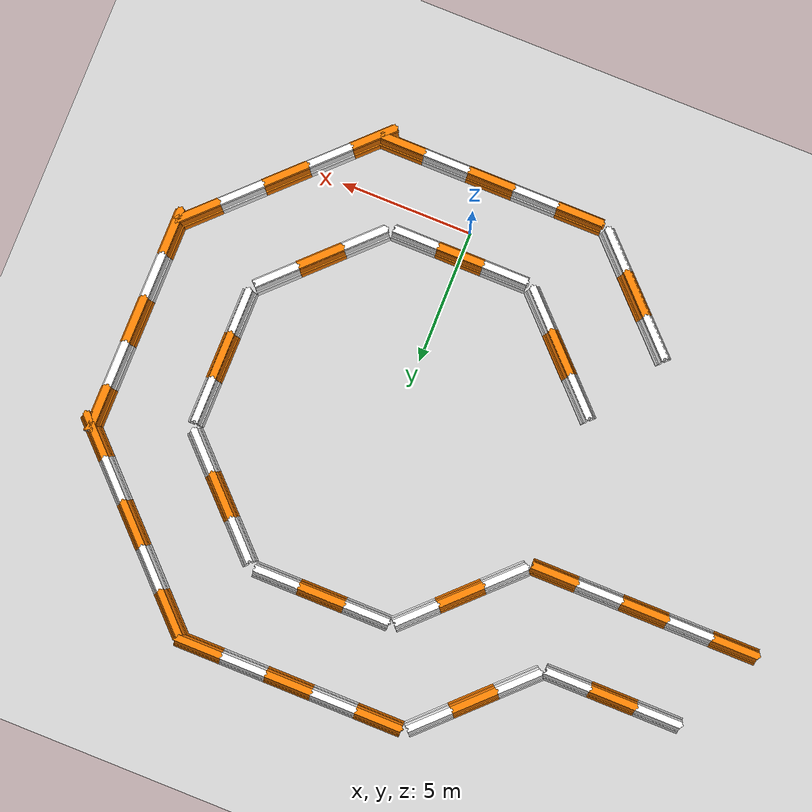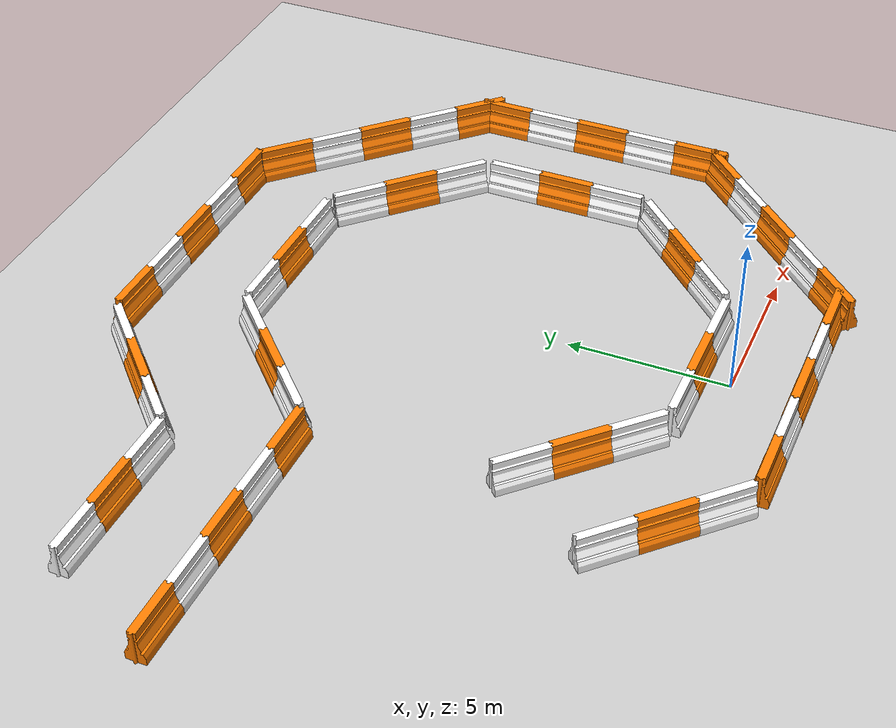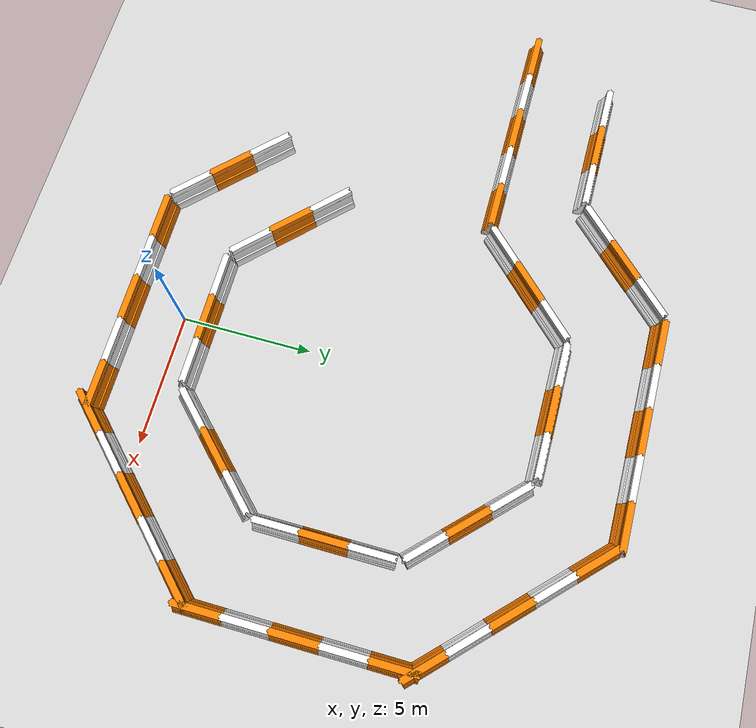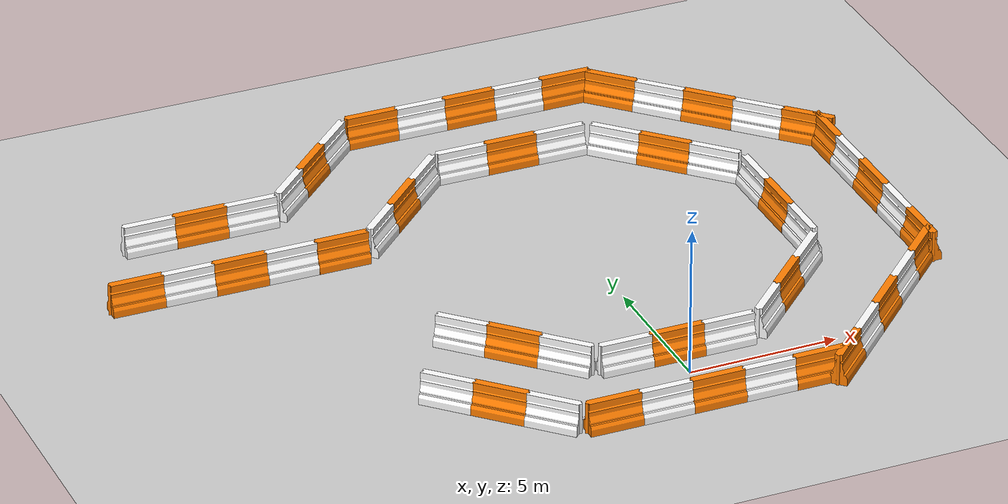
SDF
<sdf version="1.7">
 <world name="default">
  <model name="ground_plane">
   <static>1</static>
   <link name="link">
    <collision name="collision">
     <geometry><plane><normal>0 0 1</normal><size>100 100</size></plane></geometry>
     <surface>
      <contact><collide_bitmask>65535</collide_bitmask></contact>
      <friction><ode><mu>100</mu><mu2>50</mu2></ode></friction>
     </surface>
    </collision>
    <visual name="visual">
     <cast_shadows>0</cast_shadows>
     <geometry><plane><normal>0 0 1</normal><size>100 100</size></plane></geometry>
     <material>
      <script><uri>file://media/materials/scripts/gazebo.material</uri><name>Gazebo/Grey</name></script>
     </material>
    </visual>
   </link>
  </model>
  <model name="barrier_3">
   <model name="drc_practice_organge_jersey_barrier">
    <static>1</static>
    <link name="link">
     <visual name="visual">
      <geometry>
       <mesh><uri>model://drc_practice_orange_jersey_barrier/meshes/jersey_barrier.dae</uri></mesh>
      </geometry>
     </visual>
     <collision name="collision">
      <geometry>
       <mesh><uri>model://drc_practice_orange_jersey_barrier/meshes/jersey_barrier.dae</uri></mesh>
      </geometry>
     </collision>
    </link>
    <pose>-0 -1e-06 0 0 -0 0</pose>
   </model>
   <model name="drc_practice_white_jersey_barrier">
    <static>1</static>
    <link name="link">
     <visual name="visual">
      <geometry>
       <mesh><uri>model://drc_practice_white_jersey_barrier/meshes/jersey_barrier.dae</uri></mesh>
      </geometry>
     </visual>
     <collision name="collision">
      <geometry>
       <mesh><uri>model://drc_practice_white_jersey_barrier/meshes/jersey_barrier.dae</uri></mesh>
      </geometry>
     </collision>
    </link>
    <pose>0.00455 1.74067 0 0 -0 0</pose>
   </model>
   <model name="drc_practice_white_jersey_barrier_0">
    <static>1</static>
    <link name="link">
     <visual name="visual">
      <geometry>
       <mesh><uri>model://drc_practice_white_jersey_barrier/meshes/jersey_barrier.dae</uri></mesh>
      </geometry>
     </visual>
     <collision name="collision">
      <geometry>
       <mesh><uri>model://drc_practice_white_jersey_barrier/meshes/jersey_barrier.dae</uri></mesh>
      </geometry>
     </collision>
    </link>
    <pose>-0.007009 -1.73276 0 0 -0 0</pose>
   </model>
   <static>0</static>
   <pose>-0 1 0 0 0 -1.5708</pose>
  </model>
  <model name="barrier_5">
   <model name="drc_practice_organge_jersey_barrier">
    <static>1</static>
    <link name="link">
     <visual name="visual">
      <geometry>
       <mesh><uri>model://drc_practice_orange_jersey_barrier/meshes/jersey_barrier.dae</uri></mesh>
      </geometry>
     </visual>
     <collision name="collision">
      <geometry>
       <mesh><uri>model://drc_practice_orange_jersey_barrier/meshes/jersey_barrier.dae</uri></mesh>
      </geometry>
     </collision>
    </link>
    <pose>0.00082 -0.002637 0 0 -0 0</pose>
   </model>
   <model name="drc_practice_organge_jersey_barrier_0">
    <static>1</static>
    <link name="link">
     <visual name="visual">
      <geometry>
       <mesh><uri>model://drc_practice_orange_jersey_barrier/meshes/jersey_barrier.dae</uri></mesh>
      </geometry>
     </visual>
     <collision name="collision">
      <geometry>
       <mesh><uri>model://drc_practice_orange_jersey_barrier/meshes/jersey_barrier.dae</uri></mesh>
      </geometry>
     </collision>
    </link>
    <pose>0.013598 3.47709 0 0 -0 0</pose>
   </model>
   <model name="drc_practice_organge_jersey_barrier_1">
    <static>1</static>
    <link name="link">
     <visual name="visual">
      <geometry>
       <mesh><uri>model://drc_practice_orange_jersey_barrier/meshes/jersey_barrier.dae</uri></mesh>
      </geometry>
     </visual>
     <collision name="collision">
      <geometry>
       <mesh><uri>model://drc_practice_orange_jersey_barrier/meshes/jersey_barrier.dae</uri></mesh>
      </geometry>
     </collision>
    </link>
    <pose>-0.015441 -3.47408 0 0 -0 0</pose>
   </model>
   <model name="drc_practice_white_jersey_barrier">
    <static>1</static>
    <link name="link">
     <visual name="visual">
      <geometry>
       <mesh><uri>model://drc_practice_white_jersey_barrier/meshes/jersey_barrier.dae</uri></mesh>
      </geometry>
     </visual>
     <collision name="collision">
      <geometry>
       <mesh><uri>model://drc_practice_white_jersey_barrier/meshes/jersey_barrier.dae</uri></mesh>
      </geometry>
     </collision>
    </link>
    <pose>0.00537 1.73804 0 0 -0 0</pose>
   </model>
   <model name="drc_practice_white_jersey_barrier_0">
    <static>1</static>
    <link name="link">
     <visual name="visual">
      <geometry>
       <mesh><uri>model://drc_practice_white_jersey_barrier/meshes/jersey_barrier.dae</uri></mesh>
      </geometry>
     </visual>
     <collision name="collision">
      <geometry>
       <mesh><uri>model://drc_practice_white_jersey_barrier/meshes/jersey_barrier.dae</uri></mesh>
      </geometry>
     </collision>
    </link>
    <pose>-0.006189 -1.7354 0 0 -0 0</pose>
   </model>
   <static>0</static>
   <pose>0 -2 0 0 0 -1.5708</pose>
  </model>
  <model name="barrier_3_clone">
   <model name="drc_practice_organge_jersey_barrier">
    <static>1</static>
    <link name="link">
     <visual name="visual">
      <geometry>
       <mesh><uri>model://drc_practice_orange_jersey_barrier/meshes/jersey_barrier.dae</uri></mesh>
      </geometry>
     </visual>
     <collision name="collision">
      <geometry>
       <mesh><uri>model://drc_practice_orange_jersey_barrier/meshes/jersey_barrier.dae</uri></mesh>
      </geometry>
     </collision>
    </link>
    <pose>-0 -1e-06 0 0 -0 0</pose>
   </model>
   <model name="drc_practice_white_jersey_barrier">
    <static>1</static>
    <link name="link">
     <visual name="visual">
      <geometry>
       <mesh><uri>model://drc_practice_white_jersey_barrier/meshes/jersey_barrier.dae</uri></mesh>
      </geometry>
     </visual>
     <collision name="collision">
      <geometry>
       <mesh><uri>model://drc_practice_white_jersey_barrier/meshes/jersey_barrier.dae</uri></mesh>
      </geometry>
     </collision>
    </link>
    <pose>0.00455 1.74067 0 0 -0 0</pose>
   </model>
   <model name="drc_practice_white_jersey_barrier_0">
    <static>1</static>
    <link name="link">
     <visual name="visual">
      <geometry>
       <mesh><uri>model://drc_practice_white_jersey_barrier/meshes/jersey_barrier.dae</uri></mesh>
      </geometry>
     </visual>
     <collision name="collision">
      <geometry>
       <mesh><uri>model://drc_practice_white_jersey_barrier/meshes/jersey_barrier.dae</uri></mesh>
      </geometry>
     </collision>
    </link>
    <pose>-0.007009 -1.73276 0 0 -0 0</pose>
   </model>
   <static>0</static>
   <pose>4.67024 2.91222 0 0 0 -0.785402</pose>
  </model>
  <model name="barrier_3_clone_clone">
   <model name="drc_practice_organge_jersey_barrier">
    <static>1</static>
    <link name="link">
     <visual name="visual">
      <geometry>
       <mesh><uri>model://drc_practice_orange_jersey_barrier/meshes/jersey_barrier.dae</uri></mesh>
      </geometry>
     </visual>
     <collision name="collision">
      <geometry>
       <mesh><uri>model://drc_practice_orange_jersey_barrier/meshes/jersey_barrier.dae</uri></mesh>
      </geometry>
     </collision>
    </link>
    <pose>-0 -1e-06 0 0 -0 0</pose>
   </model>
   <model name="drc_practice_white_jersey_barrier">
    <static>1</static>
    <link name="link">
     <visual name="visual">
      <geometry>
       <mesh><uri>model://drc_practice_white_jersey_barrier/meshes/jersey_barrier.dae</uri></mesh>
      </geometry>
     </visual>
     <collision name="collision">
      <geometry>
       <mesh><uri>model://drc_practice_white_jersey_barrier/meshes/jersey_barrier.dae</uri></mesh>
      </geometry>
     </collision>
    </link>
    <pose>0.00455 1.74067 0 0 -0 0</pose>
   </model>
   <model name="drc_practice_white_jersey_barrier_0">
    <static>1</static>
    <link name="link">
     <visual name="visual">
      <geometry>
       <mesh><uri>model://drc_practice_white_jersey_barrier/meshes/jersey_barrier.dae</uri></mesh>
      </geometry>
     </visual>
     <collision name="collision">
      <geometry>
       <mesh><uri>model://drc_practice_white_jersey_barrier/meshes/jersey_barrier.dae</uri></mesh>
      </geometry>
     </collision>
    </link>
    <pose>-0.007009 -1.73276 0 0 -0 0</pose>
   </model>
   <static>0</static>
   <pose>6.62088 7.56063 0 0 0 -4e-06</pose>
  </model>
  <model name="barrier_3_clone_clone_clone">
   <model name="drc_practice_organge_jersey_barrier">
    <static>1</static>
    <link name="link">
     <visual name="visual">
      <geometry>
       <mesh><uri>model://drc_practice_orange_jersey_barrier/meshes/jersey_barrier.dae</uri></mesh>
      </geometry>
     </visual>
     <collision name="collision">
      <geometry>
       <mesh><uri>model://drc_practice_orange_jersey_barrier/meshes/jersey_barrier.dae</uri></mesh>
      </geometry>
     </collision>
    </link>
    <pose>-0 -1e-06 0 0 -0 0</pose>
   </model>
   <model name="drc_practice_white_jersey_barrier">
    <static>1</static>
    <link name="link">
     <visual name="visual">
      <geometry>
       <mesh><uri>model://drc_practice_white_jersey_barrier/meshes/jersey_barrier.dae</uri></mesh>
      </geometry>
     </visual>
     <collision name="collision">
      <geometry>
       <mesh><uri>model://drc_practice_white_jersey_barrier/meshes/jersey_barrier.dae</uri></mesh>
      </geometry>
     </collision>
    </link>
    <pose>0.00455 1.74067 0 0 -0 0</pose>
   </model>
   <model name="drc_practice_white_jersey_barrier_0">
    <static>1</static>
    <link name="link">
     <visual name="visual">
      <geometry>
       <mesh><uri>model://drc_practice_white_jersey_barrier/meshes/jersey_barrier.dae</uri></mesh>
      </geometry>
     </visual>
     <collision name="collision">
      <geometry>
       <mesh><uri>model://drc_practice_white_jersey_barrier/meshes/jersey_barrier.dae</uri></mesh>
      </geometry>
     </collision>
    </link>
    <pose>-0.007009 -1.73276 0 0 -0 0</pose>
   </model>
   <static>0</static>
   <pose>4.73342 12.2462 0 0 -0 0.785394</pose>
  </model>
  <model name="barrier_3_clone_clone_clone_clone">
   <model name="drc_practice_organge_jersey_barrier">
    <static>1</static>
    <link name="link">
     <visual name="visual">
      <geometry>
       <mesh><uri>model://drc_practice_orange_jersey_barrier/meshes/jersey_barrier.dae</uri></mesh>
      </geometry>
     </visual>
     <collision name="collision">
      <geometry>
       <mesh><uri>model://drc_practice_orange_jersey_barrier/meshes/jersey_barrier.dae</uri></mesh>
      </geometry>
     </collision>
    </link>
    <pose>-0 -1e-06 0 0 -0 0</pose>
   </model>
   <model name="drc_practice_white_jersey_barrier">
    <static>1</static>
    <link name="link">
     <visual name="visual">
      <geometry>
       <mesh><uri>model://drc_practice_white_jersey_barrier/meshes/jersey_barrier.dae</uri></mesh>
      </geometry>
     </visual>
     <collision name="collision">
      <geometry>
       <mesh><uri>model://drc_practice_white_jersey_barrier/meshes/jersey_barrier.dae</uri></mesh>
      </geometry>
     </collision>
    </link>
    <pose>0.00455 1.74067 0 0 -0 0</pose>
   </model>
   <model name="drc_practice_white_jersey_barrier_0">
    <static>1</static>
    <link name="link">
     <visual name="visual">
      <geometry>
       <mesh><uri>model://drc_practice_white_jersey_barrier/meshes/jersey_barrier.dae</uri></mesh>
      </geometry>
     </visual>
     <collision name="collision">
      <geometry>
       <mesh><uri>model://drc_practice_white_jersey_barrier/meshes/jersey_barrier.dae</uri></mesh>
      </geometry>
     </collision>
    </link>
    <pose>-0.007009 -1.73276 0 0 -0 0</pose>
   </model>
   <static>0</static>
   <pose>-4.65773 2.94132 0 0 -0 0.785394</pose>
  </model>
  <model name="barrier_5_clone">
   <model name="drc_practice_organge_jersey_barrier">
    <static>1</static>
    <link name="link">
     <visual name="visual">
      <geometry>
       <mesh><uri>model://drc_practice_orange_jersey_barrier/meshes/jersey_barrier.dae</uri></mesh>
      </geometry>
     </visual>
     <collision name="collision">
      <geometry>
       <mesh><uri>model://drc_practice_orange_jersey_barrier/meshes/jersey_barrier.dae</uri></mesh>
      </geometry>
     </collision>
    </link>
    <pose>0.00082 -0.002637 0 0 -0 0</pose>
   </model>
   <model name="drc_practice_organge_jersey_barrier_0">
    <static>1</static>
    <link name="link">
     <visual name="visual">
      <geometry>
       <mesh><uri>model://drc_practice_orange_jersey_barrier/meshes/jersey_barrier.dae</uri></mesh>
      </geometry>
     </visual>
     <collision name="collision">
      <geometry>
       <mesh><uri>model://drc_practice_orange_jersey_barrier/meshes/jersey_barrier.dae</uri></mesh>
      </geometry>
     </collision>
    </link>
    <pose>0.013598 3.47709 0 0 -0 0</pose>
   </model>
   <model name="drc_practice_organge_jersey_barrier_1">
    <static>1</static>
    <link name="link">
     <visual name="visual">
      <geometry>
       <mesh><uri>model://drc_practice_orange_jersey_barrier/meshes/jersey_barrier.dae</uri></mesh>
      </geometry>
     </visual>
     <collision name="collision">
      <geometry>
       <mesh><uri>model://drc_practice_orange_jersey_barrier/meshes/jersey_barrier.dae</uri></mesh>
      </geometry>
     </collision>
    </link>
    <pose>-0.015441 -3.47408 0 0 -0 0</pose>
   </model>
   <model name="drc_practice_white_jersey_barrier">
    <static>1</static>
    <link name="link">
     <visual name="visual">
      <geometry>
       <mesh><uri>model://drc_practice_white_jersey_barrier/meshes/jersey_barrier.dae</uri></mesh>
      </geometry>
     </visual>
     <collision name="collision">
      <geometry>
       <mesh><uri>model://drc_practice_white_jersey_barrier/meshes/jersey_barrier.dae</uri></mesh>
      </geometry>
     </collision>
    </link>
    <pose>0.00537 1.73804 0 0 -0 0</pose>
   </model>
   <model name="drc_practice_white_jersey_barrier_0">
    <static>1</static>
    <link name="link">
     <visual name="visual">
      <geometry>
       <mesh><uri>model://drc_practice_white_jersey_barrier/meshes/jersey_barrier.dae</uri></mesh>
      </geometry>
     </visual>
     <collision name="collision">
      <geometry>
       <mesh><uri>model://drc_practice_white_jersey_barrier/meshes/jersey_barrier.dae</uri></mesh>
      </geometry>
     </collision>
    </link>
    <pose>-0.006189 -1.7354 0 0 -0 0</pose>
   </model>
   <static>0</static>
   <pose>6.97032 0.59409 0 0 0 -0.785402</pose>
  </model>
  <model name="barrier_5_clone_clone">
   <model name="drc_practice_organge_jersey_barrier">
    <static>1</static>
    <link name="link">
     <visual name="visual">
      <geometry>
       <mesh><uri>model://drc_practice_orange_jersey_barrier/meshes/jersey_barrier.dae</uri></mesh>
      </geometry>
     </visual>
     <collision name="collision">
      <geometry>
       <mesh><uri>model://drc_practice_orange_jersey_barrier/meshes/jersey_barrier.dae</uri></mesh>
      </geometry>
     </collision>
    </link>
    <pose>0.00082 -0.002637 0 0 -0 0</pose>
   </model>
   <model name="drc_practice_organge_jersey_barrier_0">
    <static>1</static>
    <link name="link">
     <visual name="visual">
      <geometry>
       <mesh><uri>model://drc_practice_orange_jersey_barrier/meshes/jersey_barrier.dae</uri></mesh>
      </geometry>
     </visual>
     <collision name="collision">
      <geometry>
       <mesh><uri>model://drc_practice_orange_jersey_barrier/meshes/jersey_barrier.dae</uri></mesh>
      </geometry>
     </collision>
    </link>
    <pose>0.013598 3.47709 0 0 -0 0</pose>
   </model>
   <model name="drc_practice_organge_jersey_barrier_1">
    <static>1</static>
    <link name="link">
     <visual name="visual">
      <geometry>
       <mesh><uri>model://drc_practice_orange_jersey_barrier/meshes/jersey_barrier.dae</uri></mesh>
      </geometry>
     </visual>
     <collision name="collision">
      <geometry>
       <mesh><uri>model://drc_practice_orange_jersey_barrier/meshes/jersey_barrier.dae</uri></mesh>
      </geometry>
     </collision>
    </link>
    <pose>-0.015441 -3.47408 0 0 -0 0</pose>
   </model>
   <model name="drc_practice_white_jersey_barrier">
    <static>1</static>
    <link name="link">
     <visual name="visual">
      <geometry>
       <mesh><uri>model://drc_practice_white_jersey_barrier/meshes/jersey_barrier.dae</uri></mesh>
      </geometry>
     </visual>
     <collision name="collision">
      <geometry>
       <mesh><uri>model://drc_practice_white_jersey_barrier/meshes/jersey_barrier.dae</uri></mesh>
      </geometry>
     </collision>
    </link>
    <pose>0.00537 1.73804 0 0 -0 0</pose>
   </model>
   <model name="drc_practice_white_jersey_barrier_0">
    <static>1</static>
    <link name="link">
     <visual name="visual">
      <geometry>
       <mesh><uri>model://drc_practice_white_jersey_barrier/meshes/jersey_barrier.dae</uri></mesh>
      </geometry>
     </visual>
     <collision name="collision">
      <geometry>
       <mesh><uri>model://drc_practice_white_jersey_barrier/meshes/jersey_barrier.dae</uri></mesh>
      </geometry>
     </collision>
    </link>
    <pose>-0.006189 -1.7354 0 0 -0 0</pose>
   </model>
   <static>0</static>
   <pose>9.99998 7.51198 0 0 0 -4e-06</pose>
  </model>
  <model name="barrier_5_clone_clone_clone">
   <model name="drc_practice_organge_jersey_barrier">
    <static>1</static>
    <link name="link">
     <visual name="visual">
      <geometry>
       <mesh><uri>model://drc_practice_orange_jersey_barrier/meshes/jersey_barrier.dae</uri></mesh>
      </geometry>
     </visual>
     <collision name="collision">
      <geometry>
       <mesh><uri>model://drc_practice_orange_jersey_barrier/meshes/jersey_barrier.dae</uri></mesh>
      </geometry>
     </collision>
    </link>
    <pose>0.00082 -0.002637 0 0 -0 0</pose>
   </model>
   <model name="drc_practice_organge_jersey_barrier_0">
    <static>1</static>
    <link name="link">
     <visual name="visual">
      <geometry>
       <mesh><uri>model://drc_practice_orange_jersey_barrier/meshes/jersey_barrier.dae</uri></mesh>
      </geometry>
     </visual>
     <collision name="collision">
      <geometry>
       <mesh><uri>model://drc_practice_orange_jersey_barrier/meshes/jersey_barrier.dae</uri></mesh>
      </geometry>
     </collision>
    </link>
    <pose>0.013598 3.47709 0 0 -0 0</pose>
   </model>
   <model name="drc_practice_organge_jersey_barrier_1">
    <static>1</static>
    <link name="link">
     <visual name="visual">
      <geometry>
       <mesh><uri>model://drc_practice_orange_jersey_barrier/meshes/jersey_barrier.dae</uri></mesh>
      </geometry>
     </visual>
     <collision name="collision">
      <geometry>
       <mesh><uri>model://drc_practice_orange_jersey_barrier/meshes/jersey_barrier.dae</uri></mesh>
      </geometry>
     </collision>
    </link>
    <pose>-0.015441 -3.47408 0 0 -0 0</pose>
   </model>
   <model name="drc_practice_white_jersey_barrier">
    <static>1</static>
    <link name="link">
     <visual name="visual">
      <geometry>
       <mesh><uri>model://drc_practice_white_jersey_barrier/meshes/jersey_barrier.dae</uri></mesh>
      </geometry>
     </visual>
     <collision name="collision">
      <geometry>
       <mesh><uri>model://drc_practice_white_jersey_barrier/meshes/jersey_barrier.dae</uri></mesh>
      </geometry>
     </collision>
    </link>
    <pose>0.00537 1.73804 0 0 -0 0</pose>
   </model>
   <model name="drc_practice_white_jersey_barrier_0">
    <static>1</static>
    <link name="link">
     <visual name="visual">
      <geometry>
       <mesh><uri>model://drc_practice_white_jersey_barrier/meshes/jersey_barrier.dae</uri></mesh>
      </geometry>
     </visual>
     <collision name="collision">
      <geometry>
       <mesh><uri>model://drc_practice_white_jersey_barrier/meshes/jersey_barrier.dae</uri></mesh>
      </geometry>
     </collision>
    </link>
    <pose>-0.006189 -1.7354 0 0 -0 0</pose>
   </model>
   <static>0</static>
   <pose>7.30364 14.3723 0 0 -0 0.785394</pose>
  </model>
  <model name="barrier_3_clone_clone_clone_clone_clone">
   <model name="drc_practice_organge_jersey_barrier">
    <static>1</static>
    <link name="link">
     <visual name="visual">
      <geometry>
       <mesh><uri>model://drc_practice_orange_jersey_barrier/meshes/jersey_barrier.dae</uri></mesh>
      </geometry>
     </visual>
     <collision name="collision">
      <geometry>
       <mesh><uri>model://drc_practice_orange_jersey_barrier/meshes/jersey_barrier.dae</uri></mesh>
      </geometry>
     </collision>
    </link>
    <pose>-0 -1e-06 0 0 -0 0</pose>
   </model>
   <model name="drc_practice_white_jersey_barrier">
    <static>1</static>
    <link name="link">
     <visual name="visual">
      <geometry>
       <mesh><uri>model://drc_practice_white_jersey_barrier/meshes/jersey_barrier.dae</uri></mesh>
      </geometry>
     </visual>
     <collision name="collision">
      <geometry>
       <mesh><uri>model://drc_practice_white_jersey_barrier/meshes/jersey_barrier.dae</uri></mesh>
      </geometry>
     </collision>
    </link>
    <pose>0.00455 1.74067 0 0 -0 0</pose>
   </model>
   <model name="drc_practice_white_jersey_barrier_0">
    <static>1</static>
    <link name="link">
     <visual name="visual">
      <geometry>
       <mesh><uri>model://drc_practice_white_jersey_barrier/meshes/jersey_barrier.dae</uri></mesh>
      </geometry>
     </visual>
     <collision name="collision">
      <geometry>
       <mesh><uri>model://drc_practice_white_jersey_barrier/meshes/jersey_barrier.dae</uri></mesh>
      </geometry>
     </collision>
    </link>
    <pose>-0.007009 -1.73276 0 0 -0 0</pose>
   </model>
   <static>0</static>
   <pose>-6.38882 -0.053751 0 0 -0 0.785394</pose>
  </model>
  <model name="barrier_3_clone_1">
   <model name="drc_practice_organge_jersey_barrier">
    <static>1</static>
    <link name="link">
     <visual name="visual">
      <geometry>
       <mesh><uri>model://drc_practice_orange_jersey_barrier/meshes/jersey_barrier.dae</uri></mesh>
      </geometry>
     </visual>
     <collision name="collision">
      <geometry>
       <mesh><uri>model://drc_practice_orange_jersey_barrier/meshes/jersey_barrier.dae</uri></mesh>
      </geometry>
     </collision>
    </link>
    <pose>-0 -1e-06 0 0 -0 0</pose>
   </model>
   <model name="drc_practice_white_jersey_barrier">
    <static>1</static>
    <link name="link">
     <visual name="visual">
      <geometry>
       <mesh><uri>model://drc_practice_white_jersey_barrier/meshes/jersey_barrier.dae</uri></mesh>
      </geometry>
     </visual>
     <collision name="collision">
      <geometry>
       <mesh><uri>model://drc_practice_white_jersey_barrier/meshes/jersey_barrier.dae</uri></mesh>
      </geometry>
     </collision>
    </link>
    <pose>0.00455 1.74067 0 0 -0 0</pose>
   </model>
   <model name="drc_practice_white_jersey_barrier_0">
    <static>1</static>
    <link name="link">
     <visual name="visual">
      <geometry>
       <mesh><uri>model://drc_practice_white_jersey_barrier/meshes/jersey_barrier.dae</uri></mesh>
      </geometry>
     </visual>
     <collision name="collision">
      <geometry>
       <mesh><uri>model://drc_practice_white_jersey_barrier/meshes/jersey_barrier.dae</uri></mesh>
      </geometry>
     </collision>
    </link>
    <pose>-0.007009 -1.73276 0 0 -0 0</pose>
   </model>
   <static>0</static>
   <pose>0.075177 14.2215 0 0 0 -1.5708</pose>
  </model>
  <model name="barrier_3_clone_clone_1">
   <model name="drc_practice_organge_jersey_barrier">
    <static>1</static>
    <link name="link">
     <visual name="visual">
      <geometry>
       <mesh><uri>model://drc_practice_orange_jersey_barrier/meshes/jersey_barrier.dae</uri></mesh>
      </geometry>
     </visual>
     <collision name="collision">
      <geometry>
       <mesh><uri>model://drc_practice_orange_jersey_barrier/meshes/jersey_barrier.dae</uri></mesh>
      </geometry>
     </collision>
    </link>
    <pose>-0 -1e-06 0 0 -0 0</pose>
   </model>
   <model name="drc_practice_white_jersey_barrier">
    <static>1</static>
    <link name="link">
     <visual name="visual">
      <geometry>
       <mesh><uri>model://drc_practice_white_jersey_barrier/meshes/jersey_barrier.dae</uri></mesh>
      </geometry>
     </visual>
     <collision name="collision">
      <geometry>
       <mesh><uri>model://drc_practice_white_jersey_barrier/meshes/jersey_barrier.dae</uri></mesh>
      </geometry>
     </collision>
    </link>
    <pose>0.00455 1.74067 0 0 -0 0</pose>
   </model>
   <model name="drc_practice_white_jersey_barrier_0">
    <static>1</static>
    <link name="link">
     <visual name="visual">
      <geometry>
       <mesh><uri>model://drc_practice_white_jersey_barrier/meshes/jersey_barrier.dae</uri></mesh>
      </geometry>
     </visual>
     <collision name="collision">
      <geometry>
       <mesh><uri>model://drc_practice_white_jersey_barrier/meshes/jersey_barrier.dae</uri></mesh>
      </geometry>
     </collision>
    </link>
    <pose>-0.007009 -1.73276 0 0 -0 0</pose>
   </model>
   <static>0</static>
   <pose>-4.54646 12.3729 0 0 0 -0.785402</pose>
  </model>
  <model name="barrier_5_clone_0_clone">
   <model name="drc_practice_organge_jersey_barrier">
    <static>1</static>
    <link name="link">
     <visual name="visual">
      <geometry>
       <mesh><uri>model://drc_practice_orange_jersey_barrier/meshes/jersey_barrier.dae</uri></mesh>
      </geometry>
     </visual>
     <collision name="collision">
      <geometry>
       <mesh><uri>model://drc_practice_orange_jersey_barrier/meshes/jersey_barrier.dae</uri></mesh>
      </geometry>
     </collision>
    </link>
    <pose>0.00082 -0.002637 0 0 -0 0</pose>
   </model>
   <model name="drc_practice_organge_jersey_barrier_0">
    <static>1</static>
    <link name="link">
     <visual name="visual">
      <geometry>
       <mesh><uri>model://drc_practice_orange_jersey_barrier/meshes/jersey_barrier.dae</uri></mesh>
      </geometry>
     </visual>
     <collision name="collision">
      <geometry>
       <mesh><uri>model://drc_practice_orange_jersey_barrier/meshes/jersey_barrier.dae</uri></mesh>
      </geometry>
     </collision>
    </link>
    <pose>0.013598 3.47709 0 0 -0 0</pose>
   </model>
   <model name="drc_practice_organge_jersey_barrier_1">
    <static>1</static>
    <link name="link">
     <visual name="visual">
      <geometry>
       <mesh><uri>model://drc_practice_orange_jersey_barrier/meshes/jersey_barrier.dae</uri></mesh>
      </geometry>
     </visual>
     <collision name="collision">
      <geometry>
       <mesh><uri>model://drc_practice_orange_jersey_barrier/meshes/jersey_barrier.dae</uri></mesh>
      </geometry>
     </collision>
    </link>
    <pose>-0.015441 -3.47408 0 0 -0 0</pose>
   </model>
   <model name="drc_practice_white_jersey_barrier">
    <static>1</static>
    <link name="link">
     <visual name="visual">
      <geometry>
       <mesh><uri>model://drc_practice_white_jersey_barrier/meshes/jersey_barrier.dae</uri></mesh>
      </geometry>
     </visual>
     <collision name="collision">
      <geometry>
       <mesh><uri>model://drc_practice_white_jersey_barrier/meshes/jersey_barrier.dae</uri></mesh>
      </geometry>
     </collision>
    </link>
    <pose>0.00537 1.73804 0 0 -0 0</pose>
   </model>
   <model name="drc_practice_white_jersey_barrier_0">
    <static>1</static>
    <link name="link">
     <visual name="visual">
      <geometry>
       <mesh><uri>model://drc_practice_white_jersey_barrier/meshes/jersey_barrier.dae</uri></mesh>
      </geometry>
     </visual>
     <collision name="collision">
      <geometry>
       <mesh><uri>model://drc_practice_white_jersey_barrier/meshes/jersey_barrier.dae</uri></mesh>
      </geometry>
     </collision>
    </link>
    <pose>-0.006189 -1.7354 0 0 -0 0</pose>
   </model>
   <static>0</static>
   <pose>-10.8637 10.4448 0 0 0 -1.5708</pose>
  </model>
  <model name="barrier_5_clone_2">
   <model name="drc_practice_organge_jersey_barrier">
    <static>1</static>
    <link name="link">
     <visual name="visual">
      <geometry>
       <mesh><uri>model://drc_practice_orange_jersey_barrier/meshes/jersey_barrier.dae</uri></mesh>
      </geometry>
     </visual>
     <collision name="collision">
      <geometry>
       <mesh><uri>model://drc_practice_orange_jersey_barrier/meshes/jersey_barrier.dae</uri></mesh>
      </geometry>
     </collision>
    </link>
    <pose>0.00082 -0.002637 0 0 -0 0</pose>
   </model>
   <model name="drc_practice_organge_jersey_barrier_0">
    <static>1</static>
    <link name="link">
     <visual name="visual">
      <geometry>
       <mesh><uri>model://drc_practice_orange_jersey_barrier/meshes/jersey_barrier.dae</uri></mesh>
      </geometry>
     </visual>
     <collision name="collision">
      <geometry>
       <mesh><uri>model://drc_practice_orange_jersey_barrier/meshes/jersey_barrier.dae</uri></mesh>
      </geometry>
     </collision>
    </link>
    <pose>0.013598 3.47709 0 0 -0 0</pose>
   </model>
   <model name="drc_practice_organge_jersey_barrier_1">
    <static>1</static>
    <link name="link">
     <visual name="visual">
      <geometry>
       <mesh><uri>model://drc_practice_orange_jersey_barrier/meshes/jersey_barrier.dae</uri></mesh>
      </geometry>
     </visual>
     <collision name="collision">
      <geometry>
       <mesh><uri>model://drc_practice_orange_jersey_barrier/meshes/jersey_barrier.dae</uri></mesh>
      </geometry>
     </collision>
    </link>
    <pose>-0.015441 -3.47408 0 0 -0 0</pose>
   </model>
   <model name="drc_practice_white_jersey_barrier">
    <static>1</static>
    <link name="link">
     <visual name="visual">
      <geometry>
       <mesh><uri>model://drc_practice_white_jersey_barrier/meshes/jersey_barrier.dae</uri></mesh>
      </geometry>
     </visual>
     <collision name="collision">
      <geometry>
       <mesh><uri>model://drc_practice_white_jersey_barrier/meshes/jersey_barrier.dae</uri></mesh>
      </geometry>
     </collision>
    </link>
    <pose>0.00537 1.73804 0 0 -0 0</pose>
   </model>
   <model name="drc_practice_white_jersey_barrier_0">
    <static>1</static>
    <link name="link">
     <visual name="visual">
      <geometry>
       <mesh><uri>model://drc_practice_white_jersey_barrier/meshes/jersey_barrier.dae</uri></mesh>
      </geometry>
     </visual>
     <collision name="collision">
      <geometry>
       <mesh><uri>model://drc_practice_white_jersey_barrier/meshes/jersey_barrier.dae</uri></mesh>
      </geometry>
     </collision>
    </link>
    <pose>-0.006189 -1.7354 0 0 -0 0</pose>
   </model>
   <static>0</static>
   <pose>0.002007 17.5647 0 0 0 -1.5708</pose>
  </model>
  <model name="barrier_3_clone_clone_1_clone">
   <model name="drc_practice_organge_jersey_barrier">
    <static>1</static>
    <link name="link">
     <visual name="visual">
      <geometry>
       <mesh><uri>model://drc_practice_orange_jersey_barrier/meshes/jersey_barrier.dae</uri></mesh>
      </geometry>
     </visual>
     <collision name="collision">
      <geometry>
       <mesh><uri>model://drc_practice_orange_jersey_barrier/meshes/jersey_barrier.dae</uri></mesh>
      </geometry>
     </collision>
    </link>
    <pose>-0 -1e-06 0 0 -0 0</pose>
   </model>
   <model name="drc_practice_white_jersey_barrier">
    <static>1</static>
    <link name="link">
     <visual name="visual">
      <geometry>
       <mesh><uri>model://drc_practice_white_jersey_barrier/meshes/jersey_barrier.dae</uri></mesh>
      </geometry>
     </visual>
     <collision name="collision">
      <geometry>
       <mesh><uri>model://drc_practice_white_jersey_barrier/meshes/jersey_barrier.dae</uri></mesh>
      </geometry>
     </collision>
    </link>
    <pose>0.00455 1.74067 0 0 -0 0</pose>
   </model>
   <model name="drc_practice_white_jersey_barrier_0">
    <static>1</static>
    <link name="link">
     <visual name="visual">
      <geometry>
       <mesh><uri>model://drc_practice_white_jersey_barrier/meshes/jersey_barrier.dae</uri></mesh>
      </geometry>
     </visual>
     <collision name="collision">
      <geometry>
       <mesh><uri>model://drc_practice_white_jersey_barrier/meshes/jersey_barrier.dae</uri></mesh>
      </geometry>
     </collision>
    </link>
    <pose>-0.007009 -1.73276 0 0 -0 0</pose>
   </model>
   <static>0</static>
   <pose>-6.3722 15.691 0 0 0 -0.785402</pose>
  </model>
  <model name="barrier_3_clone_0_clone_0">
   <model name="drc_practice_organge_jersey_barrier">
    <static>1</static>
    <link name="link">
     <visual name="visual">
      <geometry>
       <mesh><uri>model://drc_practice_orange_jersey_barrier/meshes/jersey_barrier.dae</uri></mesh>
      </geometry>
     </visual>
     <collision name="collision">
      <geometry>
       <mesh><uri>model://drc_practice_orange_jersey_barrier/meshes/jersey_barrier.dae</uri></mesh>
      </geometry>
     </collision>
    </link>
    <pose>-0 -1e-06 0 0 -0 0</pose>
   </model>
   <model name="drc_practice_white_jersey_barrier">
    <static>1</static>
    <link name="link">
     <visual name="visual">
      <geometry>
       <mesh><uri>model://drc_practice_white_jersey_barrier/meshes/jersey_barrier.dae</uri></mesh>
      </geometry>
     </visual>
     <collision name="collision">
      <geometry>
       <mesh><uri>model://drc_practice_white_jersey_barrier/meshes/jersey_barrier.dae</uri></mesh>
      </geometry>
     </collision>
    </link>
    <pose>0.00455 1.74067 0 0 -0 0</pose>
   </model>
   <model name="drc_practice_white_jersey_barrier_0">
    <static>1</static>
    <link name="link">
     <visual name="visual">
      <geometry>
       <mesh><uri>model://drc_practice_white_jersey_barrier/meshes/jersey_barrier.dae</uri></mesh>
      </geometry>
     </visual>
     <collision name="collision">
      <geometry>
       <mesh><uri>model://drc_practice_white_jersey_barrier/meshes/jersey_barrier.dae</uri></mesh>
      </geometry>
     </collision>
    </link>
    <pose>-0.007009 -1.73276 0 0 -0 0</pose>
   </model>
   <static>0</static>
   <pose>-10.948 13.7584 0 0 0 -1.5708</pose>
  </model>
 </world>
</sdf>
